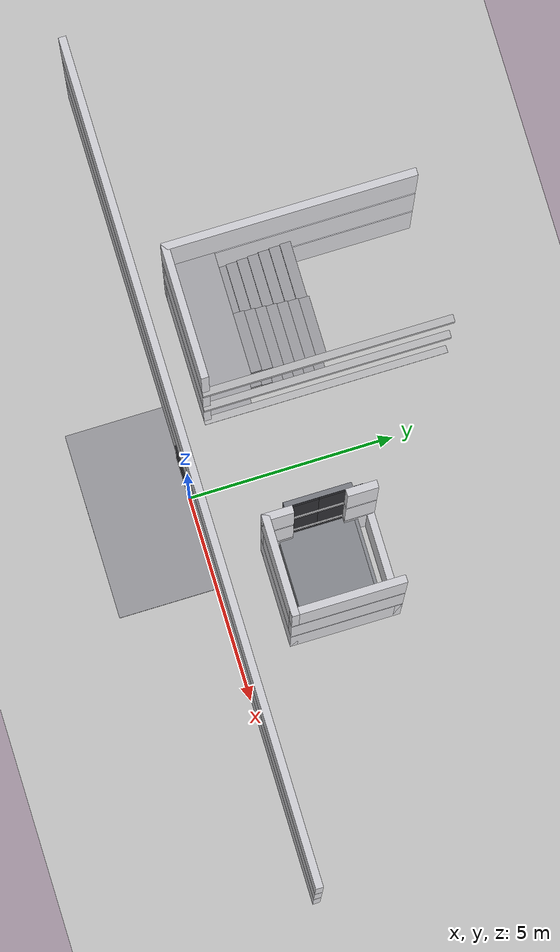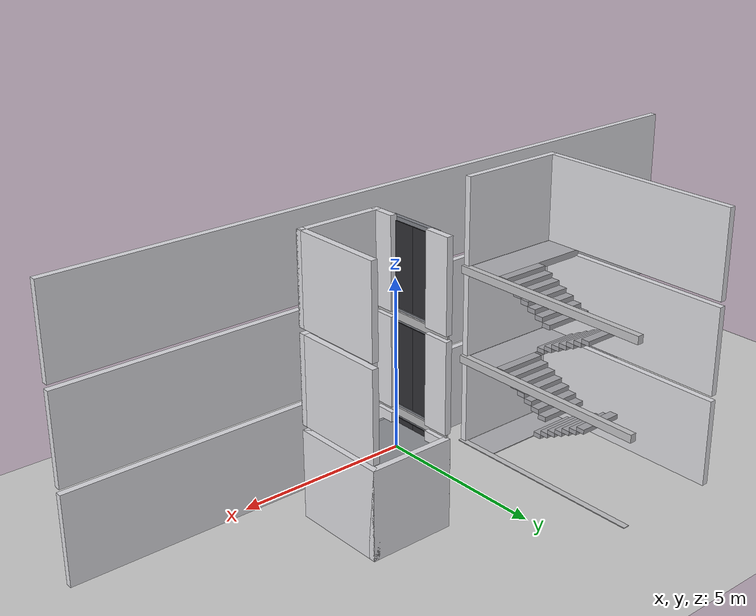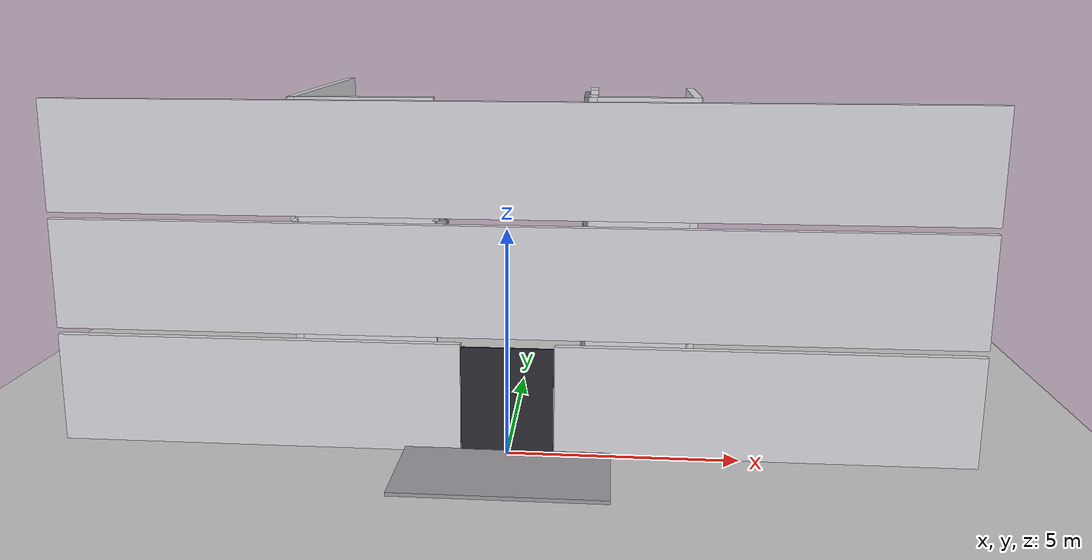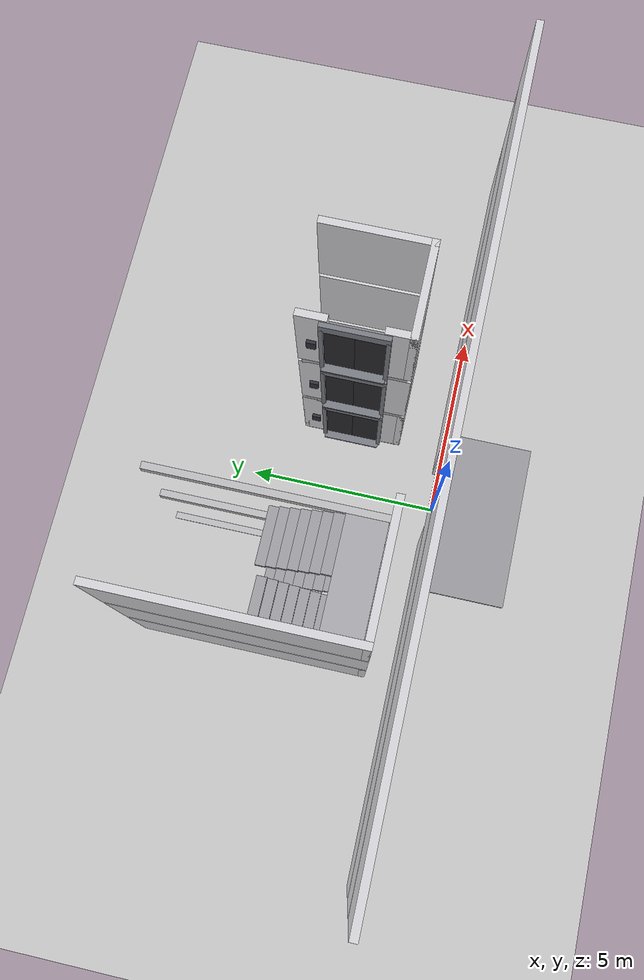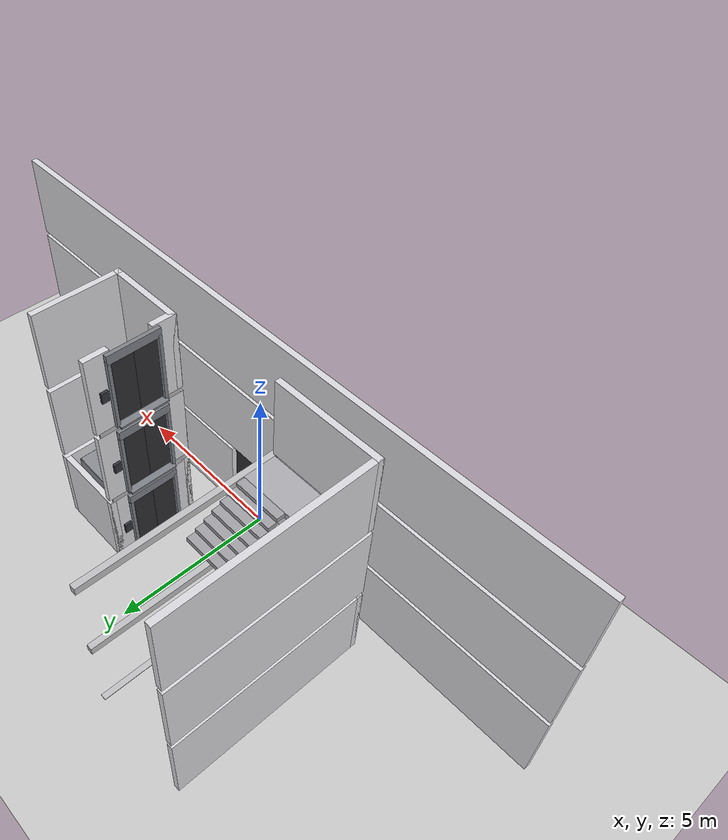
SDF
<sdf version="1.7">
 <world name="generated_world">
  <include><uri>model://sun</uri></include>
  <include><uri>model://ground_plane</uri></include>
  <model name="generated_building">
   <static>true</static>
   <link name="entrance_apron">
    <pose>0.0000 -1.2000 0.0400 0.0000 0.0000 0.0000</pose>
    <collision name="entrance_apron_collision">
     <geometry><box><size>4.5000 2.4000 0.0800</size></box></geometry>
    </collision>
    <visual name="entrance_apron_visual">
     <geometry><box><size>4.5000 2.4000 0.0800</size></box></geometry>
     <material><ambient>0.62 0.62 0.64 1</ambient><diffuse>0.62 0.62 0.64 1</diffuse></material>
    </visual>
    <gravity>false</gravity>
   </link>
   <link name="stair_edge_infill_floor_0">
    <pose>-1.6500 3.8500 -0.1100 0.0000 0.0000 0.0000</pose>
    <collision name="stair_edge_infill_floor_0_collision">
     <geometry><box><size>0.1800 6.0000 0.2200</size></box></geometry>
    </collision>
    <visual name="stair_edge_infill_floor_0_visual">
     <geometry><box><size>0.1800 6.0000 0.2200</size></box></geometry>
     <material><ambient>0.76 0.76 0.77 1</ambient><diffuse>0.76 0.76 0.77 1</diffuse></material>
    </visual>
    <gravity>false</gravity>
   </link>
   <link name="exterior_south_entrance_left">
    <pose>-5.5100 0.0900 1.2250 0.0000 0.0000 0.0000</pose>
    <collision name="exterior_south_entrance_left_collision">
     <geometry><box><size>8.9800 0.1800 2.4500</size></box></geometry>
    </collision>
    <visual name="exterior_south_entrance_left_visual">
     <geometry><box><size>8.9800 0.1800 2.4500</size></box></geometry>
     <material><ambient>0.86 0.86 0.88 1</ambient><diffuse>0.86 0.86 0.88 1</diffuse></material>
    </visual>
    <gravity>false</gravity>
   </link>
   <link name="exterior_south_entrance_right">
    <pose>5.5100 0.0900 1.2250 0.0000 0.0000 0.0000</pose>
    <collision name="exterior_south_entrance_right_collision">
     <geometry><box><size>8.9800 0.1800 2.4500</size></box></geometry>
    </collision>
    <visual name="exterior_south_entrance_right_visual">
     <geometry><box><size>8.9800 0.1800 2.4500</size></box></geometry>
     <material><ambient>0.86 0.86 0.88 1</ambient><diffuse>0.86 0.86 0.88 1</diffuse></material>
    </visual>
    <gravity>false</gravity>
   </link>
   <link name="stair_core_floor_0_west">
    <pose>-4.7600 3.8500 1.2250 0.0000 0.0000 0.0000</pose>
    <collision name="stair_core_floor_0_west_collision">
     <geometry><box><size>0.1800 6.0000 2.4500</size></box></geometry>
    </collision>
    <visual name="stair_core_floor_0_west_visual">
     <geometry><box><size>0.1800 6.0000 2.4500</size></box></geometry>
     <material><ambient>0.86 0.86 0.88 1</ambient><diffuse>0.86 0.86 0.88 1</diffuse></material>
    </visual>
    <gravity>false</gravity>
   </link>
   <link name="stair_core_floor_0_south">
    <pose>-3.2500 0.9400 1.2250 0.0000 0.0000 0.0000</pose>
    <collision name="stair_core_floor_0_south_collision">
     <geometry><box><size>3.2000 0.1800 2.4500</size></box></geometry>
    </collision>
    <visual name="stair_core_floor_0_south_visual">
     <geometry><box><size>3.2000 0.1800 2.4500</size></box></geometry>
     <material><ambient>0.86 0.86 0.88 1</ambient><diffuse>0.86 0.86 0.88 1</diffuse></material>
    </visual>
    <gravity>false</gravity>
   </link>
   <link name="elevator_core_floor_0_west_lower">
    <pose>1.7400 1.6150 1.2250 0.0000 0.0000 0.0000</pose>
    <collision name="elevator_core_floor_0_west_lower_collision">
     <geometry><box><size>0.1800 0.7300 2.4500</size></box></geometry>
    </collision>
    <visual name="elevator_core_floor_0_west_lower_visual">
     <geometry><box><size>0.1800 0.7300 2.4500</size></box></geometry>
     <material><ambient>0.86 0.86 0.88 1</ambient><diffuse>0.86 0.86 0.88 1</diffuse></material>
    </visual>
    <gravity>false</gravity>
   </link>
   <link name="elevator_core_floor_0_west_upper">
    <pose>1.7400 3.5850 1.2250 0.0000 0.0000 0.0000</pose>
    <collision name="elevator_core_floor_0_west_upper_collision">
     <geometry><box><size>0.1800 0.7300 2.4500</size></box></geometry>
    </collision>
    <visual name="elevator_core_floor_0_west_upper_visual">
     <geometry><box><size>0.1800 0.7300 2.4500</size></box></geometry>
     <material><ambient>0.86 0.86 0.88 1</ambient><diffuse>0.86 0.86 0.88 1</diffuse></material>
    </visual>
    <gravity>false</gravity>
   </link>
   <link name="elevator_core_floor_0_east">
    <pose>3.9600 2.6000 1.2250 0.0000 0.0000 0.0000</pose>
    <collision name="elevator_core_floor_0_east_collision">
     <geometry><box><size>0.1800 2.7000 2.4500</size></box></geometry>
    </collision>
    <visual name="elevator_core_floor_0_east_visual">
     <geometry><box><size>0.1800 2.7000 2.4500</size></box></geometry>
     <material><ambient>0.86 0.86 0.88 1</ambient><diffuse>0.86 0.86 0.88 1</diffuse></material>
    </visual>
    <gravity>false</gravity>
   </link>
   <link name="elevator_core_floor_0_south">
    <pose>2.8500 1.3400 1.2250 0.0000 0.0000 0.0000</pose>
    <collision name="elevator_core_floor_0_south_collision">
     <geometry><box><size>2.4000 0.1800 2.4500</size></box></geometry>
    </collision>
    <visual name="elevator_core_floor_0_south_visual">
     <geometry><box><size>2.4000 0.1800 2.4500</size></box></geometry>
     <material><ambient>0.86 0.86 0.88 1</ambient><diffuse>0.86 0.86 0.88 1</diffuse></material>
    </visual>
    <gravity>false</gravity>
   </link>
   <link name="elevator_core_floor_0_north">
    <pose>2.8500 3.8600 1.2250 0.0000 0.0000 0.0000</pose>
    <collision name="elevator_core_floor_0_north_collision">
     <geometry><box><size>2.4000 0.1800 2.4500</size></box></geometry>
    </collision>
    <visual name="elevator_core_floor_0_north_visual">
     <geometry><box><size>2.4000 0.1800 2.4500</size></box></geometry>
     <material><ambient>0.86 0.86 0.88 1</ambient><diffuse>0.86 0.86 0.88 1</diffuse></material>
    </visual>
    <gravity>false</gravity>
   </link>
   <link name="elevator_threshold_floor_0">
    <pose>1.5400 2.6000 0.0300 0.0000 0.0000 0.0000</pose>
    <collision name="elevator_threshold_floor_0_collision">
     <geometry><box><size>0.2200 1.5000 0.0600</size></box></geometry>
    </collision>
    <visual name="elevator_threshold_floor_0_visual">
     <geometry><box><size>0.2200 1.5000 0.0600</size></box></geometry>
     <material><ambient>0.50 0.51 0.54 1</ambient><diffuse>0.50 0.51 0.54 1</diffuse></material>
    </visual>
    <gravity>false</gravity>
   </link>
   <link name="elevator_sill_infill_floor_0">
    <pose>1.6750 2.6000 -0.1100 0.0000 0.0000 0.0000</pose>
    <collision name="elevator_sill_infill_floor_0_collision">
     <geometry><box><size>0.0500 2.5200 0.2200</size></box></geometry>
    </collision>
    <visual name="elevator_sill_infill_floor_0_visual">
     <geometry><box><size>0.0500 2.5200 0.2200</size></box></geometry>
     <material><ambient>0.72 0.72 0.73 1</ambient><diffuse>0.72 0.72 0.73 1</diffuse></material>
    </visual>
    <gravity>false</gravity>
   </link>
   <link name="elevator_header_floor_0">
    <pose>1.5900 2.6000 2.2600 0.0000 0.0000 0.0000</pose>
    <collision name="elevator_header_floor_0_collision">
     <geometry><box><size>0.1200 1.6000 0.2800</size></box></geometry>
    </collision>
    <visual name="elevator_header_floor_0_visual">
     <geometry><box><size>0.1200 1.6000 0.2800</size></box></geometry>
     <material><ambient>0.50 0.51 0.54 1</ambient><diffuse>0.50 0.51 0.54 1</diffuse></material>
    </visual>
    <gravity>false</gravity>
   </link>
   <link name="elevator_jamb_left_floor_0">
    <pose>1.5900 1.8500 1.1000 0.0000 0.0000 0.0000</pose>
    <collision name="elevator_jamb_left_floor_0_collision">
     <geometry><box><size>0.1200 0.1000 2.2000</size></box></geometry>
    </collision>
    <visual name="elevator_jamb_left_floor_0_visual">
     <geometry><box><size>0.1200 0.1000 2.2000</size></box></geometry>
     <material><ambient>0.50 0.51 0.54 1</ambient><diffuse>0.50 0.51 0.54 1</diffuse></material>
    </visual>
    <gravity>false</gravity>
   </link>
   <link name="elevator_jamb_right_floor_0">
    <pose>1.5900 3.3500 1.1000 0.0000 0.0000 0.0000</pose>
    <collision name="elevator_jamb_right_floor_0_collision">
     <geometry><box><size>0.1200 0.1000 2.2000</size></box></geometry>
    </collision>
    <visual name="elevator_jamb_right_floor_0_visual">
     <geometry><box><size>0.1200 0.1000 2.2000</size></box></geometry>
     <material><ambient>0.50 0.51 0.54 1</ambient><diffuse>0.50 0.51 0.54 1</diffuse></material>
    </visual>
    <gravity>false</gravity>
   </link>
   <link name="elevator_call_panel_floor_0">
    <pose>1.5700 3.5800 1.2000 0.0000 0.0000 0.0000</pose>
    <collision name="elevator_call_panel_floor_0_collision">
     <geometry><box><size>0.0800 0.2200 0.3200</size></box></geometry>
    </collision>
    <visual name="elevator_call_panel_floor_0_visual">
     <geometry><box><size>0.0800 0.2200 0.3200</size></box></geometry>
     <material><ambient>0.20 0.20 0.24 1</ambient><diffuse>0.20 0.20 0.24 1</diffuse></material>
    </visual>
    <gravity>false</gravity>
   </link>
   <link name="stair_edge_infill_floor_1">
    <pose>-1.6500 3.8500 2.4900 0.0000 0.0000 0.0000</pose>
    <collision name="stair_edge_infill_floor_1_collision">
     <geometry><box><size>0.1800 6.0000 0.2200</size></box></geometry>
    </collision>
    <visual name="stair_edge_infill_floor_1_visual">
     <geometry><box><size>0.1800 6.0000 0.2200</size></box></geometry>
     <material><ambient>0.76 0.76 0.77 1</ambient><diffuse>0.76 0.76 0.77 1</diffuse></material>
    </visual>
    <gravity>false</gravity>
   </link>
   <link name="exterior_south_floor_1">
    <pose>0.0000 0.0900 3.8250 0.0000 0.0000 0.0000</pose>
    <collision name="exterior_south_floor_1_collision">
     <geometry><box><size>20.0000 0.1800 2.4500</size></box></geometry>
    </collision>
    <visual name="exterior_south_floor_1_visual">
     <geometry><box><size>20.0000 0.1800 2.4500</size></box></geometry>
     <material><ambient>0.86 0.86 0.88 1</ambient><diffuse>0.86 0.86 0.88 1</diffuse></material>
    </visual>
    <gravity>false</gravity>
   </link>
   <link name="stair_core_floor_1_west">
    <pose>-4.7600 3.8500 3.8250 0.0000 0.0000 0.0000</pose>
    <collision name="stair_core_floor_1_west_collision">
     <geometry><box><size>0.1800 6.0000 2.4500</size></box></geometry>
    </collision>
    <visual name="stair_core_floor_1_west_visual">
     <geometry><box><size>0.1800 6.0000 2.4500</size></box></geometry>
     <material><ambient>0.86 0.86 0.88 1</ambient><diffuse>0.86 0.86 0.88 1</diffuse></material>
    </visual>
    <gravity>false</gravity>
   </link>
   <link name="stair_core_floor_1_south">
    <pose>-3.2500 0.9400 3.8250 0.0000 0.0000 0.0000</pose>
    <collision name="stair_core_floor_1_south_collision">
     <geometry><box><size>3.2000 0.1800 2.4500</size></box></geometry>
    </collision>
    <visual name="stair_core_floor_1_south_visual">
     <geometry><box><size>3.2000 0.1800 2.4500</size></box></geometry>
     <material><ambient>0.86 0.86 0.88 1</ambient><diffuse>0.86 0.86 0.88 1</diffuse></material>
    </visual>
    <gravity>false</gravity>
   </link>
   <link name="elevator_core_floor_1_west_lower">
    <pose>1.7400 1.6150 3.8250 0.0000 0.0000 0.0000</pose>
    <collision name="elevator_core_floor_1_west_lower_collision">
     <geometry><box><size>0.1800 0.7300 2.4500</size></box></geometry>
    </collision>
    <visual name="elevator_core_floor_1_west_lower_visual">
     <geometry><box><size>0.1800 0.7300 2.4500</size></box></geometry>
     <material><ambient>0.86 0.86 0.88 1</ambient><diffuse>0.86 0.86 0.88 1</diffuse></material>
    </visual>
    <gravity>false</gravity>
   </link>
   <link name="elevator_core_floor_1_west_upper">
    <pose>1.7400 3.5850 3.8250 0.0000 0.0000 0.0000</pose>
    <collision name="elevator_core_floor_1_west_upper_collision">
     <geometry><box><size>0.1800 0.7300 2.4500</size></box></geometry>
    </collision>
    <visual name="elevator_core_floor_1_west_upper_visual">
     <geometry><box><size>0.1800 0.7300 2.4500</size></box></geometry>
     <material><ambient>0.86 0.86 0.88 1</ambient><diffuse>0.86 0.86 0.88 1</diffuse></material>
    </visual>
    <gravity>false</gravity>
   </link>
   <link name="elevator_core_floor_1_east">
    <pose>3.9600 2.6000 3.8250 0.0000 0.0000 0.0000</pose>
    <collision name="elevator_core_floor_1_east_collision">
     <geometry><box><size>0.1800 2.7000 2.4500</size></box></geometry>
    </collision>
    <visual name="elevator_core_floor_1_east_visual">
     <geometry><box><size>0.1800 2.7000 2.4500</size></box></geometry>
     <material><ambient>0.86 0.86 0.88 1</ambient><diffuse>0.86 0.86 0.88 1</diffuse></material>
    </visual>
    <gravity>false</gravity>
   </link>
   <link name="elevator_core_floor_1_south">
    <pose>2.8500 1.3400 3.8250 0.0000 0.0000 0.0000</pose>
    <collision name="elevator_core_floor_1_south_collision">
     <geometry><box><size>2.4000 0.1800 2.4500</size></box></geometry>
    </collision>
    <visual name="elevator_core_floor_1_south_visual">
     <geometry><box><size>2.4000 0.1800 2.4500</size></box></geometry>
     <material><ambient>0.86 0.86 0.88 1</ambient><diffuse>0.86 0.86 0.88 1</diffuse></material>
    </visual>
    <gravity>false</gravity>
   </link>
   <link name="elevator_threshold_floor_1">
    <pose>1.5400 2.6000 2.6300 0.0000 0.0000 0.0000</pose>
    <collision name="elevator_threshold_floor_1_collision">
     <geometry><box><size>0.2200 1.5000 0.0600</size></box></geometry>
    </collision>
    <visual name="elevator_threshold_floor_1_visual">
     <geometry><box><size>0.2200 1.5000 0.0600</size></box></geometry>
     <material><ambient>0.50 0.51 0.54 1</ambient><diffuse>0.50 0.51 0.54 1</diffuse></material>
    </visual>
    <gravity>false</gravity>
   </link>
   <link name="elevator_sill_infill_floor_1">
    <pose>1.6750 2.6000 2.4900 0.0000 0.0000 0.0000</pose>
    <collision name="elevator_sill_infill_floor_1_collision">
     <geometry><box><size>0.0500 2.5200 0.2200</size></box></geometry>
    </collision>
    <visual name="elevator_sill_infill_floor_1_visual">
     <geometry><box><size>0.0500 2.5200 0.2200</size></box></geometry>
     <material><ambient>0.72 0.72 0.73 1</ambient><diffuse>0.72 0.72 0.73 1</diffuse></material>
    </visual>
    <gravity>false</gravity>
   </link>
   <link name="elevator_header_floor_1">
    <pose>1.5900 2.6000 4.8600 0.0000 0.0000 0.0000</pose>
    <collision name="elevator_header_floor_1_collision">
     <geometry><box><size>0.1200 1.6000 0.2800</size></box></geometry>
    </collision>
    <visual name="elevator_header_floor_1_visual">
     <geometry><box><size>0.1200 1.6000 0.2800</size></box></geometry>
     <material><ambient>0.50 0.51 0.54 1</ambient><diffuse>0.50 0.51 0.54 1</diffuse></material>
    </visual>
    <gravity>false</gravity>
   </link>
   <link name="elevator_jamb_left_floor_1">
    <pose>1.5900 1.8500 3.7000 0.0000 0.0000 0.0000</pose>
    <collision name="elevator_jamb_left_floor_1_collision">
     <geometry><box><size>0.1200 0.1000 2.2000</size></box></geometry>
    </collision>
    <visual name="elevator_jamb_left_floor_1_visual">
     <geometry><box><size>0.1200 0.1000 2.2000</size></box></geometry>
     <material><ambient>0.50 0.51 0.54 1</ambient><diffuse>0.50 0.51 0.54 1</diffuse></material>
    </visual>
    <gravity>false</gravity>
   </link>
   <link name="elevator_jamb_right_floor_1">
    <pose>1.5900 3.3500 3.7000 0.0000 0.0000 0.0000</pose>
    <collision name="elevator_jamb_right_floor_1_collision">
     <geometry><box><size>0.1200 0.1000 2.2000</size></box></geometry>
    </collision>
    <visual name="elevator_jamb_right_floor_1_visual">
     <geometry><box><size>0.1200 0.1000 2.2000</size></box></geometry>
     <material><ambient>0.50 0.51 0.54 1</ambient><diffuse>0.50 0.51 0.54 1</diffuse></material>
    </visual>
    <gravity>false</gravity>
   </link>
   <link name="elevator_call_panel_floor_1">
    <pose>1.5700 3.5800 3.8000 0.0000 0.0000 0.0000</pose>
    <collision name="elevator_call_panel_floor_1_collision">
     <geometry><box><size>0.0800 0.2200 0.3200</size></box></geometry>
    </collision>
    <visual name="elevator_call_panel_floor_1_visual">
     <geometry><box><size>0.0800 0.2200 0.3200</size></box></geometry>
     <material><ambient>0.20 0.20 0.24 1</ambient><diffuse>0.20 0.20 0.24 1</diffuse></material>
    </visual>
    <gravity>false</gravity>
   </link>
   <link name="stair_edge_infill_floor_2">
    <pose>-1.6500 3.8500 5.0900 0.0000 0.0000 0.0000</pose>
    <collision name="stair_edge_infill_floor_2_collision">
     <geometry><box><size>0.1800 6.0000 0.2200</size></box></geometry>
    </collision>
    <visual name="stair_edge_infill_floor_2_visual">
     <geometry><box><size>0.1800 6.0000 0.2200</size></box></geometry>
     <material><ambient>0.76 0.76 0.77 1</ambient><diffuse>0.76 0.76 0.77 1</diffuse></material>
    </visual>
    <gravity>false</gravity>
   </link>
   <link name="exterior_south_floor_2">
    <pose>0.0000 0.0900 6.4250 0.0000 0.0000 0.0000</pose>
    <collision name="exterior_south_floor_2_collision">
     <geometry><box><size>20.0000 0.1800 2.4500</size></box></geometry>
    </collision>
    <visual name="exterior_south_floor_2_visual">
     <geometry><box><size>20.0000 0.1800 2.4500</size></box></geometry>
     <material><ambient>0.86 0.86 0.88 1</ambient><diffuse>0.86 0.86 0.88 1</diffuse></material>
    </visual>
    <gravity>false</gravity>
   </link>
   <link name="stair_core_floor_2_west">
    <pose>-4.7600 3.8500 6.4250 0.0000 0.0000 0.0000</pose>
    <collision name="stair_core_floor_2_west_collision">
     <geometry><box><size>0.1800 6.0000 2.4500</size></box></geometry>
    </collision>
    <visual name="stair_core_floor_2_west_visual">
     <geometry><box><size>0.1800 6.0000 2.4500</size></box></geometry>
     <material><ambient>0.86 0.86 0.88 1</ambient><diffuse>0.86 0.86 0.88 1</diffuse></material>
    </visual>
    <gravity>false</gravity>
   </link>
   <link name="stair_core_floor_2_south">
    <pose>-3.2500 0.9400 6.4250 0.0000 0.0000 0.0000</pose>
    <collision name="stair_core_floor_2_south_collision">
     <geometry><box><size>3.2000 0.1800 2.4500</size></box></geometry>
    </collision>
    <visual name="stair_core_floor_2_south_visual">
     <geometry><box><size>3.2000 0.1800 2.4500</size></box></geometry>
     <material><ambient>0.86 0.86 0.88 1</ambient><diffuse>0.86 0.86 0.88 1</diffuse></material>
    </visual>
    <gravity>false</gravity>
   </link>
   <link name="elevator_core_floor_2_west_lower">
    <pose>1.7400 1.6150 6.4250 0.0000 0.0000 0.0000</pose>
    <collision name="elevator_core_floor_2_west_lower_collision">
     <geometry><box><size>0.1800 0.7300 2.4500</size></box></geometry>
    </collision>
    <visual name="elevator_core_floor_2_west_lower_visual">
     <geometry><box><size>0.1800 0.7300 2.4500</size></box></geometry>
     <material><ambient>0.86 0.86 0.88 1</ambient><diffuse>0.86 0.86 0.88 1</diffuse></material>
    </visual>
    <gravity>false</gravity>
   </link>
   <link name="elevator_core_floor_2_west_upper">
    <pose>1.7400 3.5850 6.4250 0.0000 0.0000 0.0000</pose>
    <collision name="elevator_core_floor_2_west_upper_collision">
     <geometry><box><size>0.1800 0.7300 2.4500</size></box></geometry>
    </collision>
    <visual name="elevator_core_floor_2_west_upper_visual">
     <geometry><box><size>0.1800 0.7300 2.4500</size></box></geometry>
     <material><ambient>0.86 0.86 0.88 1</ambient><diffuse>0.86 0.86 0.88 1</diffuse></material>
    </visual>
    <gravity>false</gravity>
   </link>
   <link name="elevator_core_floor_2_east">
    <pose>3.9600 2.6000 6.4250 0.0000 0.0000 0.0000</pose>
    <collision name="elevator_core_floor_2_east_collision">
     <geometry><box><size>0.1800 2.7000 2.4500</size></box></geometry>
    </collision>
    <visual name="elevator_core_floor_2_east_visual">
     <geometry><box><size>0.1800 2.7000 2.4500</size></box></geometry>
     <material><ambient>0.86 0.86 0.88 1</ambient><diffuse>0.86 0.86 0.88 1</diffuse></material>
    </visual>
    <gravity>false</gravity>
   </link>
   <link name="elevator_core_floor_2_south">
    <pose>2.8500 1.3400 6.4250 0.0000 0.0000 0.0000</pose>
    <collision name="elevator_core_floor_2_south_collision">
     <geometry><box><size>2.4000 0.1800 2.4500</size></box></geometry>
    </collision>
    <visual name="elevator_core_floor_2_south_visual">
     <geometry><box><size>2.4000 0.1800 2.4500</size></box></geometry>
     <material><ambient>0.86 0.86 0.88 1</ambient><diffuse>0.86 0.86 0.88 1</diffuse></material>
    </visual>
    <gravity>false</gravity>
   </link>
   <link name="elevator_threshold_floor_2">
    <pose>1.5400 2.6000 5.2300 0.0000 0.0000 0.0000</pose>
    <collision name="elevator_threshold_floor_2_collision">
     <geometry><box><size>0.2200 1.5000 0.0600</size></box></geometry>
    </collision>
    <visual name="elevator_threshold_floor_2_visual">
     <geometry><box><size>0.2200 1.5000 0.0600</size></box></geometry>
     <material><ambient>0.50 0.51 0.54 1</ambient><diffuse>0.50 0.51 0.54 1</diffuse></material>
    </visual>
    <gravity>false</gravity>
   </link>
   <link name="elevator_sill_infill_floor_2">
    <pose>1.6750 2.6000 5.0900 0.0000 0.0000 0.0000</pose>
    <collision name="elevator_sill_infill_floor_2_collision">
     <geometry><box><size>0.0500 2.5200 0.2200</size></box></geometry>
    </collision>
    <visual name="elevator_sill_infill_floor_2_visual">
     <geometry><box><size>0.0500 2.5200 0.2200</size></box></geometry>
     <material><ambient>0.72 0.72 0.73 1</ambient><diffuse>0.72 0.72 0.73 1</diffuse></material>
    </visual>
    <gravity>false</gravity>
   </link>
   <link name="elevator_header_floor_2">
    <pose>1.5900 2.6000 7.4600 0.0000 0.0000 0.0000</pose>
    <collision name="elevator_header_floor_2_collision">
     <geometry><box><size>0.1200 1.6000 0.2800</size></box></geometry>
    </collision>
    <visual name="elevator_header_floor_2_visual">
     <geometry><box><size>0.1200 1.6000 0.2800</size></box></geometry>
     <material><ambient>0.50 0.51 0.54 1</ambient><diffuse>0.50 0.51 0.54 1</diffuse></material>
    </visual>
    <gravity>false</gravity>
   </link>
   <link name="elevator_jamb_left_floor_2">
    <pose>1.5900 1.8500 6.3000 0.0000 0.0000 0.0000</pose>
    <collision name="elevator_jamb_left_floor_2_collision">
     <geometry><box><size>0.1200 0.1000 2.2000</size></box></geometry>
    </collision>
    <visual name="elevator_jamb_left_floor_2_visual">
     <geometry><box><size>0.1200 0.1000 2.2000</size></box></geometry>
     <material><ambient>0.50 0.51 0.54 1</ambient><diffuse>0.50 0.51 0.54 1</diffuse></material>
    </visual>
    <gravity>false</gravity>
   </link>
   <link name="elevator_jamb_right_floor_2">
    <pose>1.5900 3.3500 6.3000 0.0000 0.0000 0.0000</pose>
    <collision name="elevator_jamb_right_floor_2_collision">
     <geometry><box><size>0.1200 0.1000 2.2000</size></box></geometry>
    </collision>
    <visual name="elevator_jamb_right_floor_2_visual">
     <geometry><box><size>0.1200 0.1000 2.2000</size></box></geometry>
     <material><ambient>0.50 0.51 0.54 1</ambient><diffuse>0.50 0.51 0.54 1</diffuse></material>
    </visual>
    <gravity>false</gravity>
   </link>
   <link name="elevator_call_panel_floor_2">
    <pose>1.5700 3.5800 6.4000 0.0000 0.0000 0.0000</pose>
    <collision name="elevator_call_panel_floor_2_collision">
     <geometry><box><size>0.0800 0.2200 0.3200</size></box></geometry>
    </collision>
    <visual name="elevator_call_panel_floor_2_visual">
     <geometry><box><size>0.0800 0.2200 0.3200</size></box></geometry>
     <material><ambient>0.20 0.20 0.24 1</ambient><diffuse>0.20 0.20 0.24 1</diffuse></material>
    </visual>
    <gravity>false</gravity>
   </link>
   <link name="stair_floor_landing_floor_0">
    <pose>-3.2500 1.5500 -0.0900 0.0000 0.0000 0.0000</pose>
    <collision name="stair_floor_landing_floor_0_collision">
     <geometry><box><size>3.0200 1.0000 0.1800</size></box></geometry>
    </collision>
    <visual name="stair_floor_landing_floor_0_visual">
     <geometry><box><size>3.0200 1.0000 0.1800</size></box></geometry>
     <material><ambient>0.68 0.68 0.70 1</ambient><diffuse>0.68 0.68 0.70 1</diffuse></material>
    </visual>
    <gravity>false</gravity>
   </link>
   <link name="stair_floor_landing_floor_1">
    <pose>-3.2500 1.5500 2.5100 0.0000 0.0000 0.0000</pose>
    <collision name="stair_floor_landing_floor_1_collision">
     <geometry><box><size>3.0200 1.0000 0.1800</size></box></geometry>
    </collision>
    <visual name="stair_floor_landing_floor_1_visual">
     <geometry><box><size>3.0200 1.0000 0.1800</size></box></geometry>
     <material><ambient>0.68 0.68 0.70 1</ambient><diffuse>0.68 0.68 0.70 1</diffuse></material>
    </visual>
    <gravity>false</gravity>
   </link>
   <link name="stair_floor_landing_floor_2">
    <pose>-3.2500 1.5500 5.1100 0.0000 0.0000 0.0000</pose>
    <collision name="stair_floor_landing_floor_2_collision">
     <geometry><box><size>3.0200 1.0000 0.1800</size></box></geometry>
    </collision>
    <visual name="stair_floor_landing_floor_2_visual">
     <geometry><box><size>3.0200 1.0000 0.1800</size></box></geometry>
     <material><ambient>0.68 0.68 0.70 1</ambient><diffuse>0.68 0.68 0.70 1</diffuse></material>
    </visual>
    <gravity>false</gravity>
   </link>
   <link name="stair_flight_a_floor_0_step_0">
    <pose>-4.0150 2.1800 0.0650 0.0000 0.0000 0.0000</pose>
    <collision name="stair_flight_a_floor_0_step_0_collision">
     <geometry><box><size>1.4300 0.2600 0.1300</size></box></geometry>
    </collision>
    <visual name="stair_flight_a_floor_0_step_0_visual">
     <geometry><box><size>1.4300 0.2600 0.1300</size></box></geometry>
     <material><ambient>0.64 0.64 0.66 1</ambient><diffuse>0.64 0.64 0.66 1</diffuse></material>
    </visual>
    <gravity>false</gravity>
   </link>
   <link name="stair_flight_a_floor_0_step_1">
    <pose>-4.0150 2.4400 0.1950 0.0000 0.0000 0.0000</pose>
    <collision name="stair_flight_a_floor_0_step_1_collision">
     <geometry><box><size>1.4300 0.2600 0.1300</size></box></geometry>
    </collision>
    <visual name="stair_flight_a_floor_0_step_1_visual">
     <geometry><box><size>1.4300 0.2600 0.1300</size></box></geometry>
     <material><ambient>0.64 0.64 0.66 1</ambient><diffuse>0.64 0.64 0.66 1</diffuse></material>
    </visual>
    <gravity>false</gravity>
   </link>
   <link name="stair_flight_a_floor_0_step_2">
    <pose>-4.0150 2.7000 0.3250 0.0000 0.0000 0.0000</pose>
    <collision name="stair_flight_a_floor_0_step_2_collision">
     <geometry><box><size>1.4300 0.2600 0.1300</size></box></geometry>
    </collision>
    <visual name="stair_flight_a_floor_0_step_2_visual">
     <geometry><box><size>1.4300 0.2600 0.1300</size></box></geometry>
     <material><ambient>0.64 0.64 0.66 1</ambient><diffuse>0.64 0.64 0.66 1</diffuse></material>
    </visual>
    <gravity>false</gravity>
   </link>
   <link name="stair_flight_a_floor_0_step_3">
    <pose>-4.0150 2.9600 0.4550 0.0000 0.0000 0.0000</pose>
    <collision name="stair_flight_a_floor_0_step_3_collision">
     <geometry><box><size>1.4300 0.2600 0.1300</size></box></geometry>
    </collision>
    <visual name="stair_flight_a_floor_0_step_3_visual">
     <geometry><box><size>1.4300 0.2600 0.1300</size></box></geometry>
     <material><ambient>0.64 0.64 0.66 1</ambient><diffuse>0.64 0.64 0.66 1</diffuse></material>
    </visual>
    <gravity>false</gravity>
   </link>
   <link name="stair_flight_a_floor_0_step_4">
    <pose>-4.0150 3.2200 0.5850 0.0000 0.0000 0.0000</pose>
    <collision name="stair_flight_a_floor_0_step_4_collision">
     <geometry><box><size>1.4300 0.2600 0.1300</size></box></geometry>
    </collision>
    <visual name="stair_flight_a_floor_0_step_4_visual">
     <geometry><box><size>1.4300 0.2600 0.1300</size></box></geometry>
     <material><ambient>0.64 0.64 0.66 1</ambient><diffuse>0.64 0.64 0.66 1</diffuse></material>
    </visual>
    <gravity>false</gravity>
   </link>
   <link name="stair_flight_a_floor_0_step_5">
    <pose>-4.0150 3.4800 0.7150 0.0000 0.0000 0.0000</pose>
    <collision name="stair_flight_a_floor_0_step_5_collision">
     <geometry><box><size>1.4300 0.2600 0.1300</size></box></geometry>
    </collision>
    <visual name="stair_flight_a_floor_0_step_5_visual">
     <geometry><box><size>1.4300 0.2600 0.1300</size></box></geometry>
     <material><ambient>0.64 0.64 0.66 1</ambient><diffuse>0.64 0.64 0.66 1</diffuse></material>
    </visual>
    <gravity>false</gravity>
   </link>
   <link name="stair_flight_a_floor_0_step_6">
    <pose>-4.0150 3.7400 0.8450 0.0000 0.0000 0.0000</pose>
    <collision name="stair_flight_a_floor_0_step_6_collision">
     <geometry><box><size>1.4300 0.2600 0.1300</size></box></geometry>
    </collision>
    <visual name="stair_flight_a_floor_0_step_6_visual">
     <geometry><box><size>1.4300 0.2600 0.1300</size></box></geometry>
     <material><ambient>0.64 0.64 0.66 1</ambient><diffuse>0.64 0.64 0.66 1</diffuse></material>
    </visual>
    <gravity>false</gravity>
   </link>
   <link name="stair_flight_b_floor_0_step_3">
    <pose>-2.4850 3.7400 1.7550 0.0000 0.0000 0.0000</pose>
    <collision name="stair_flight_b_floor_0_step_3_collision">
     <geometry><box><size>1.4300 0.2600 0.1300</size></box></geometry>
    </collision>
    <visual name="stair_flight_b_floor_0_step_3_visual">
     <geometry><box><size>1.4300 0.2600 0.1300</size></box></geometry>
     <material><ambient>0.64 0.64 0.66 1</ambient><diffuse>0.64 0.64 0.66 1</diffuse></material>
    </visual>
    <gravity>false</gravity>
   </link>
   <link name="stair_flight_b_floor_0_step_4">
    <pose>-2.4850 3.4800 1.8850 0.0000 0.0000 0.0000</pose>
    <collision name="stair_flight_b_floor_0_step_4_collision">
     <geometry><box><size>1.4300 0.2600 0.1300</size></box></geometry>
    </collision>
    <visual name="stair_flight_b_floor_0_step_4_visual">
     <geometry><box><size>1.4300 0.2600 0.1300</size></box></geometry>
     <material><ambient>0.64 0.64 0.66 1</ambient><diffuse>0.64 0.64 0.66 1</diffuse></material>
    </visual>
    <gravity>false</gravity>
   </link>
   <link name="stair_flight_b_floor_0_step_5">
    <pose>-2.4850 3.2200 2.0150 0.0000 0.0000 0.0000</pose>
    <collision name="stair_flight_b_floor_0_step_5_collision">
     <geometry><box><size>1.4300 0.2600 0.1300</size></box></geometry>
    </collision>
    <visual name="stair_flight_b_floor_0_step_5_visual">
     <geometry><box><size>1.4300 0.2600 0.1300</size></box></geometry>
     <material><ambient>0.64 0.64 0.66 1</ambient><diffuse>0.64 0.64 0.66 1</diffuse></material>
    </visual>
    <gravity>false</gravity>
   </link>
   <link name="stair_flight_b_floor_0_step_6">
    <pose>-2.4850 2.9600 2.1450 0.0000 0.0000 0.0000</pose>
    <collision name="stair_flight_b_floor_0_step_6_collision">
     <geometry><box><size>1.4300 0.2600 0.1300</size></box></geometry>
    </collision>
    <visual name="stair_flight_b_floor_0_step_6_visual">
     <geometry><box><size>1.4300 0.2600 0.1300</size></box></geometry>
     <material><ambient>0.64 0.64 0.66 1</ambient><diffuse>0.64 0.64 0.66 1</diffuse></material>
    </visual>
    <gravity>false</gravity>
   </link>
   <link name="stair_flight_b_floor_0_step_7">
    <pose>-2.4850 2.7000 2.2750 0.0000 0.0000 0.0000</pose>
    <collision name="stair_flight_b_floor_0_step_7_collision">
     <geometry><box><size>1.4300 0.2600 0.1300</size></box></geometry>
    </collision>
    <visual name="stair_flight_b_floor_0_step_7_visual">
     <geometry><box><size>1.4300 0.2600 0.1300</size></box></geometry>
     <material><ambient>0.64 0.64 0.66 1</ambient><diffuse>0.64 0.64 0.66 1</diffuse></material>
    </visual>
    <gravity>false</gravity>
   </link>
   <link name="stair_flight_b_floor_0_step_8">
    <pose>-2.4850 2.4400 2.4050 0.0000 0.0000 0.0000</pose>
    <collision name="stair_flight_b_floor_0_step_8_collision">
     <geometry><box><size>1.4300 0.2600 0.1300</size></box></geometry>
    </collision>
    <visual name="stair_flight_b_floor_0_step_8_visual">
     <geometry><box><size>1.4300 0.2600 0.1300</size></box></geometry>
     <material><ambient>0.64 0.64 0.66 1</ambient><diffuse>0.64 0.64 0.66 1</diffuse></material>
    </visual>
    <gravity>false</gravity>
   </link>
   <link name="stair_flight_b_floor_0_step_9">
    <pose>-2.4850 2.1800 2.5350 0.0000 0.0000 0.0000</pose>
    <collision name="stair_flight_b_floor_0_step_9_collision">
     <geometry><box><size>1.4300 0.2600 0.1300</size></box></geometry>
    </collision>
    <visual name="stair_flight_b_floor_0_step_9_visual">
     <geometry><box><size>1.4300 0.2600 0.1300</size></box></geometry>
     <material><ambient>0.64 0.64 0.66 1</ambient><diffuse>0.64 0.64 0.66 1</diffuse></material>
    </visual>
    <gravity>false</gravity>
   </link>
   <link name="stair_flight_a_floor_1_step_0">
    <pose>-4.0150 2.1800 2.6650 0.0000 0.0000 0.0000</pose>
    <collision name="stair_flight_a_floor_1_step_0_collision">
     <geometry><box><size>1.4300 0.2600 0.1300</size></box></geometry>
    </collision>
    <visual name="stair_flight_a_floor_1_step_0_visual">
     <geometry><box><size>1.4300 0.2600 0.1300</size></box></geometry>
     <material><ambient>0.64 0.64 0.66 1</ambient><diffuse>0.64 0.64 0.66 1</diffuse></material>
    </visual>
    <gravity>false</gravity>
   </link>
   <link name="stair_flight_a_floor_1_step_1">
    <pose>-4.0150 2.4400 2.7950 0.0000 0.0000 0.0000</pose>
    <collision name="stair_flight_a_floor_1_step_1_collision">
     <geometry><box><size>1.4300 0.2600 0.1300</size></box></geometry>
    </collision>
    <visual name="stair_flight_a_floor_1_step_1_visual">
     <geometry><box><size>1.4300 0.2600 0.1300</size></box></geometry>
     <material><ambient>0.64 0.64 0.66 1</ambient><diffuse>0.64 0.64 0.66 1</diffuse></material>
    </visual>
    <gravity>false</gravity>
   </link>
   <link name="stair_flight_a_floor_1_step_2">
    <pose>-4.0150 2.7000 2.9250 0.0000 0.0000 0.0000</pose>
    <collision name="stair_flight_a_floor_1_step_2_collision">
     <geometry><box><size>1.4300 0.2600 0.1300</size></box></geometry>
    </collision>
    <visual name="stair_flight_a_floor_1_step_2_visual">
     <geometry><box><size>1.4300 0.2600 0.1300</size></box></geometry>
     <material><ambient>0.64 0.64 0.66 1</ambient><diffuse>0.64 0.64 0.66 1</diffuse></material>
    </visual>
    <gravity>false</gravity>
   </link>
   <link name="stair_flight_a_floor_1_step_3">
    <pose>-4.0150 2.9600 3.0550 0.0000 0.0000 0.0000</pose>
    <collision name="stair_flight_a_floor_1_step_3_collision">
     <geometry><box><size>1.4300 0.2600 0.1300</size></box></geometry>
    </collision>
    <visual name="stair_flight_a_floor_1_step_3_visual">
     <geometry><box><size>1.4300 0.2600 0.1300</size></box></geometry>
     <material><ambient>0.64 0.64 0.66 1</ambient><diffuse>0.64 0.64 0.66 1</diffuse></material>
    </visual>
    <gravity>false</gravity>
   </link>
   <link name="stair_flight_a_floor_1_step_4">
    <pose>-4.0150 3.2200 3.1850 0.0000 0.0000 0.0000</pose>
    <collision name="stair_flight_a_floor_1_step_4_collision">
     <geometry><box><size>1.4300 0.2600 0.1300</size></box></geometry>
    </collision>
    <visual name="stair_flight_a_floor_1_step_4_visual">
     <geometry><box><size>1.4300 0.2600 0.1300</size></box></geometry>
     <material><ambient>0.64 0.64 0.66 1</ambient><diffuse>0.64 0.64 0.66 1</diffuse></material>
    </visual>
    <gravity>false</gravity>
   </link>
   <link name="stair_flight_a_floor_1_step_5">
    <pose>-4.0150 3.4800 3.3150 0.0000 0.0000 0.0000</pose>
    <collision name="stair_flight_a_floor_1_step_5_collision">
     <geometry><box><size>1.4300 0.2600 0.1300</size></box></geometry>
    </collision>
    <visual name="stair_flight_a_floor_1_step_5_visual">
     <geometry><box><size>1.4300 0.2600 0.1300</size></box></geometry>
     <material><ambient>0.64 0.64 0.66 1</ambient><diffuse>0.64 0.64 0.66 1</diffuse></material>
    </visual>
    <gravity>false</gravity>
   </link>
   <link name="stair_flight_a_floor_1_step_6">
    <pose>-4.0150 3.7400 3.4450 0.0000 0.0000 0.0000</pose>
    <collision name="stair_flight_a_floor_1_step_6_collision">
     <geometry><box><size>1.4300 0.2600 0.1300</size></box></geometry>
    </collision>
    <visual name="stair_flight_a_floor_1_step_6_visual">
     <geometry><box><size>1.4300 0.2600 0.1300</size></box></geometry>
     <material><ambient>0.64 0.64 0.66 1</ambient><diffuse>0.64 0.64 0.66 1</diffuse></material>
    </visual>
    <gravity>false</gravity>
   </link>
   <link name="stair_flight_b_floor_1_step_3">
    <pose>-2.4850 3.7400 4.3550 0.0000 0.0000 0.0000</pose>
    <collision name="stair_flight_b_floor_1_step_3_collision">
     <geometry><box><size>1.4300 0.2600 0.1300</size></box></geometry>
    </collision>
    <visual name="stair_flight_b_floor_1_step_3_visual">
     <geometry><box><size>1.4300 0.2600 0.1300</size></box></geometry>
     <material><ambient>0.64 0.64 0.66 1</ambient><diffuse>0.64 0.64 0.66 1</diffuse></material>
    </visual>
    <gravity>false</gravity>
   </link>
   <link name="stair_flight_b_floor_1_step_4">
    <pose>-2.4850 3.4800 4.4850 0.0000 0.0000 0.0000</pose>
    <collision name="stair_flight_b_floor_1_step_4_collision">
     <geometry><box><size>1.4300 0.2600 0.1300</size></box></geometry>
    </collision>
    <visual name="stair_flight_b_floor_1_step_4_visual">
     <geometry><box><size>1.4300 0.2600 0.1300</size></box></geometry>
     <material><ambient>0.64 0.64 0.66 1</ambient><diffuse>0.64 0.64 0.66 1</diffuse></material>
    </visual>
    <gravity>false</gravity>
   </link>
   <link name="stair_flight_b_floor_1_step_5">
    <pose>-2.4850 3.2200 4.6150 0.0000 0.0000 0.0000</pose>
    <collision name="stair_flight_b_floor_1_step_5_collision">
     <geometry><box><size>1.4300 0.2600 0.1300</size></box></geometry>
    </collision>
    <visual name="stair_flight_b_floor_1_step_5_visual">
     <geometry><box><size>1.4300 0.2600 0.1300</size></box></geometry>
     <material><ambient>0.64 0.64 0.66 1</ambient><diffuse>0.64 0.64 0.66 1</diffuse></material>
    </visual>
    <gravity>false</gravity>
   </link>
   <link name="stair_flight_b_floor_1_step_6">
    <pose>-2.4850 2.9600 4.7450 0.0000 0.0000 0.0000</pose>
    <collision name="stair_flight_b_floor_1_step_6_collision">
     <geometry><box><size>1.4300 0.2600 0.1300</size></box></geometry>
    </collision>
    <visual name="stair_flight_b_floor_1_step_6_visual">
     <geometry><box><size>1.4300 0.2600 0.1300</size></box></geometry>
     <material><ambient>0.64 0.64 0.66 1</ambient><diffuse>0.64 0.64 0.66 1</diffuse></material>
    </visual>
    <gravity>false</gravity>
   </link>
   <link name="stair_flight_b_floor_1_step_7">
    <pose>-2.4850 2.7000 4.8750 0.0000 0.0000 0.0000</pose>
    <collision name="stair_flight_b_floor_1_step_7_collision">
     <geometry><box><size>1.4300 0.2600 0.1300</size></box></geometry>
    </collision>
    <visual name="stair_flight_b_floor_1_step_7_visual">
     <geometry><box><size>1.4300 0.2600 0.1300</size></box></geometry>
     <material><ambient>0.64 0.64 0.66 1</ambient><diffuse>0.64 0.64 0.66 1</diffuse></material>
    </visual>
    <gravity>false</gravity>
   </link>
   <link name="stair_flight_b_floor_1_step_8">
    <pose>-2.4850 2.4400 5.0050 0.0000 0.0000 0.0000</pose>
    <collision name="stair_flight_b_floor_1_step_8_collision">
     <geometry><box><size>1.4300 0.2600 0.1300</size></box></geometry>
    </collision>
    <visual name="stair_flight_b_floor_1_step_8_visual">
     <geometry><box><size>1.4300 0.2600 0.1300</size></box></geometry>
     <material><ambient>0.64 0.64 0.66 1</ambient><diffuse>0.64 0.64 0.66 1</diffuse></material>
    </visual>
    <gravity>false</gravity>
   </link>
   <link name="stair_flight_b_floor_1_step_9">
    <pose>-2.4850 2.1800 5.1350 0.0000 0.0000 0.0000</pose>
    <collision name="stair_flight_b_floor_1_step_9_collision">
     <geometry><box><size>1.4300 0.2600 0.1300</size></box></geometry>
    </collision>
    <visual name="stair_flight_b_floor_1_step_9_visual">
     <geometry><box><size>1.4300 0.2600 0.1300</size></box></geometry>
     <material><ambient>0.64 0.64 0.66 1</ambient><diffuse>0.64 0.64 0.66 1</diffuse></material>
    </visual>
    <gravity>false</gravity>
   </link>
  </model>
  <model name="dynamic_main_entrance">
   <static>false</static>
   <pose>0.0000 0.0000 1.2000 0.0000 0.0000 1.5708</pose>
   <link name="left_panel">
    <gravity>false</gravity>
    <kinematic>true</kinematic>
    <pose>0.0000 -0.5000 0.0000 0.0000 0.0000 0.0000</pose>
    <collision name="left_panel_collision">
     <geometry><box><size>0.0600 1.0000 2.4000</size></box></geometry>
    </collision>
    <visual name="left_panel_visual">
     <geometry><box><size>0.0600 1.0000 2.4000</size></box></geometry>
     <material><ambient>0.18 0.18 0.20 1</ambient><diffuse>0.18 0.18 0.20 1</diffuse></material>
    </visual>
   </link>
   <link name="right_panel">
    <gravity>false</gravity>
    <kinematic>true</kinematic>
    <pose>0.0000 0.5000 0.0000 0.0000 0.0000 0.0000</pose>
    <collision name="right_panel_collision">
     <geometry><box><size>0.0600 1.0000 2.4000</size></box></geometry>
    </collision>
    <visual name="right_panel_visual">
     <geometry><box><size>0.0600 1.0000 2.4000</size></box></geometry>
     <material><ambient>0.18 0.18 0.20 1</ambient><diffuse>0.18 0.18 0.20 1</diffuse></material>
    </visual>
   </link>
  </model>
  <model name="dynamic_elevator_floor_0">
   <static>false</static>
   <pose>1.6500 2.6000 1.2000 0.0000 0.0000 3.1416</pose>
   <link name="left_panel">
    <gravity>false</gravity>
    <kinematic>true</kinematic>
    <pose>0.0000 -0.3500 0.0000 0.0000 0.0000 0.0000</pose>
    <collision name="left_panel_collision">
     <geometry><box><size>0.0600 0.7000 2.2000</size></box></geometry>
    </collision>
    <visual name="left_panel_visual">
     <geometry><box><size>0.0600 0.7000 2.2000</size></box></geometry>
     <material><ambient>0.18 0.18 0.20 1</ambient><diffuse>0.18 0.18 0.20 1</diffuse></material>
    </visual>
   </link>
   <link name="right_panel">
    <gravity>false</gravity>
    <kinematic>true</kinematic>
    <pose>0.0000 0.3500 0.0000 0.0000 0.0000 0.0000</pose>
    <collision name="right_panel_collision">
     <geometry><box><size>0.0600 0.7000 2.2000</size></box></geometry>
    </collision>
    <visual name="right_panel_visual">
     <geometry><box><size>0.0600 0.7000 2.2000</size></box></geometry>
     <material><ambient>0.18 0.18 0.20 1</ambient><diffuse>0.18 0.18 0.20 1</diffuse></material>
    </visual>
   </link>
  </model>
  <model name="dynamic_elevator_floor_1">
   <static>false</static>
   <pose>1.6500 2.6000 3.8000 0.0000 0.0000 3.1416</pose>
   <link name="left_panel">
    <gravity>false</gravity>
    <kinematic>true</kinematic>
    <pose>0.0000 -0.3500 0.0000 0.0000 0.0000 0.0000</pose>
    <collision name="left_panel_collision">
     <geometry><box><size>0.0600 0.7000 2.2000</size></box></geometry>
    </collision>
    <visual name="left_panel_visual">
     <geometry><box><size>0.0600 0.7000 2.2000</size></box></geometry>
     <material><ambient>0.18 0.18 0.20 1</ambient><diffuse>0.18 0.18 0.20 1</diffuse></material>
    </visual>
   </link>
   <link name="right_panel">
    <gravity>false</gravity>
    <kinematic>true</kinematic>
    <pose>0.0000 0.3500 0.0000 0.0000 0.0000 0.0000</pose>
    <collision name="right_panel_collision">
     <geometry><box><size>0.0600 0.7000 2.2000</size></box></geometry>
    </collision>
    <visual name="right_panel_visual">
     <geometry><box><size>0.0600 0.7000 2.2000</size></box></geometry>
     <material><ambient>0.18 0.18 0.20 1</ambient><diffuse>0.18 0.18 0.20 1</diffuse></material>
    </visual>
   </link>
  </model>
  <model name="dynamic_elevator_floor_2">
   <static>false</static>
   <pose>1.6500 2.6000 6.4000 0.0000 0.0000 3.1416</pose>
   <link name="left_panel">
    <gravity>false</gravity>
    <kinematic>true</kinematic>
    <pose>0.0000 -0.3500 0.0000 0.0000 0.0000 0.0000</pose>
    <collision name="left_panel_collision">
     <geometry><box><size>0.0600 0.7000 2.2000</size></box></geometry>
    </collision>
    <visual name="left_panel_visual">
     <geometry><box><size>0.0600 0.7000 2.2000</size></box></geometry>
     <material><ambient>0.18 0.18 0.20 1</ambient><diffuse>0.18 0.18 0.20 1</diffuse></material>
    </visual>
   </link>
   <link name="right_panel">
    <gravity>false</gravity>
    <kinematic>true</kinematic>
    <pose>0.0000 0.3500 0.0000 0.0000 0.0000 0.0000</pose>
    <collision name="right_panel_collision">
     <geometry><box><size>0.0600 0.7000 2.2000</size></box></geometry>
    </collision>
    <visual name="right_panel_visual">
     <geometry><box><size>0.0600 0.7000 2.2000</size></box></geometry>
     <material><ambient>0.18 0.18 0.20 1</ambient><diffuse>0.18 0.18 0.20 1</diffuse></material>
    </visual>
   </link>
  </model>
  <model name="dynamic_elevator_main">
   <static>false</static>
   <pose>2.7600 2.6000 1.0300 0.0000 0.0000 -1.5708</pose>
   <link name="car">
    <gravity>false</gravity>
    <kinematic>true</kinematic>
    <collision name="car_floor_collision">
     <pose>0.0000 0.0000 -1.0900 0.0000 0.0000 0.0000</pose>
     <geometry><box><size>1.9000 2.1000 0.1200</size></box></geometry>
    </collision>
    <visual name="car_floor_visual">
     <pose>0.0000 0.0000 -1.0900 0.0000 0.0000 0.0000</pose>
     <geometry><box><size>1.9000 2.1000 0.1200</size></box></geometry>
     <material><ambient>0.32 0.32 0.35 1</ambient><diffuse>0.32 0.32 0.35 1</diffuse></material>
    </visual>
    <collision name="back_collision">
     <pose>0.0000 1.0100 0.0000 0.0000 0.0000 0.0000</pose>
     <geometry><box><size>1.9000 0.0800 2.3000</size></box></geometry>
    </collision>
    <visual name="back_visual">
     <pose>0.0000 1.0100 0.0000 0.0000 0.0000 0.0000</pose>
     <geometry><box><size>1.9000 0.0800 2.3000</size></box></geometry>
     <material><ambient>0.55 0.56 0.58 1</ambient><diffuse>0.55 0.56 0.58 1</diffuse></material>
    </visual>
    <collision name="left_collision">
     <pose>-0.9100 0.0000 0.0000 0.0000 0.0000 0.0000</pose>
     <geometry><box><size>0.0800 2.1000 2.3000</size></box></geometry>
    </collision>
    <visual name="left_visual">
     <pose>-0.9100 0.0000 0.0000 0.0000 0.0000 0.0000</pose>
     <geometry><box><size>0.0800 2.1000 2.3000</size></box></geometry>
     <material><ambient>0.55 0.56 0.58 1</ambient><diffuse>0.55 0.56 0.58 1</diffuse></material>
    </visual>
    <collision name="right_collision">
     <pose>0.9100 0.0000 0.0000 0.0000 0.0000 0.0000</pose>
     <geometry><box><size>0.0800 2.1000 2.3000</size></box></geometry>
    </collision>
    <visual name="right_visual">
     <pose>0.9100 0.0000 0.0000 0.0000 0.0000 0.0000</pose>
     <geometry><box><size>0.0800 2.1000 2.3000</size></box></geometry>
     <material><ambient>0.55 0.56 0.58 1</ambient><diffuse>0.55 0.56 0.58 1</diffuse></material>
    </visual>
    <collision name="top_collision">
     <pose>0.0000 0.0000 1.1200 0.0000 0.0000 0.0000</pose>
     <geometry><box><size>1.9000 2.1000 0.0600</size></box></geometry>
    </collision>
    <visual name="top_visual">
     <pose>0.0000 0.0000 1.1200 0.0000 0.0000 0.0000</pose>
     <geometry><box><size>1.9000 2.1000 0.0600</size></box></geometry>
     <material><ambient>0.55 0.56 0.58 1</ambient><diffuse>0.55 0.56 0.58 1</diffuse></material>
    </visual>
   </link>
  </model>
 </world>
</sdf>
